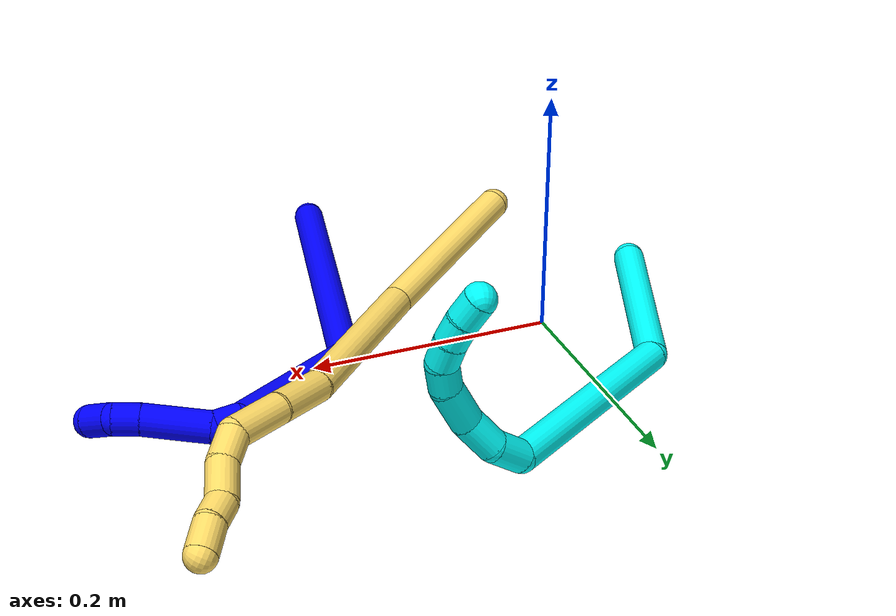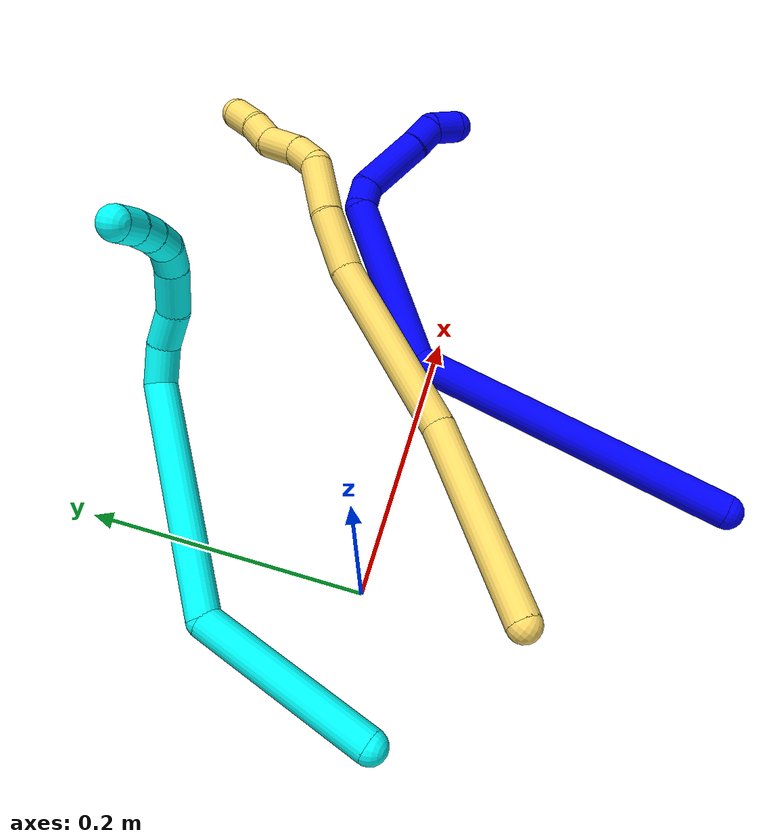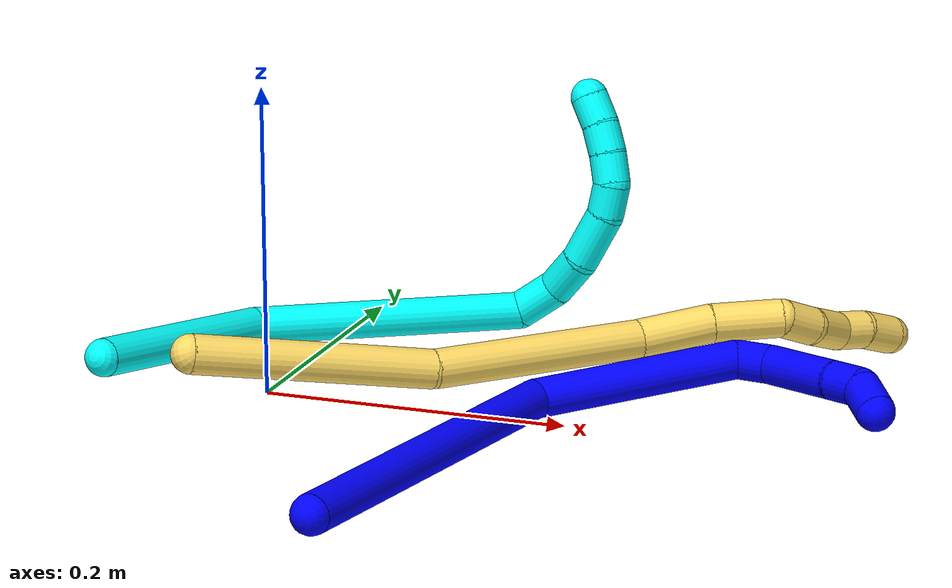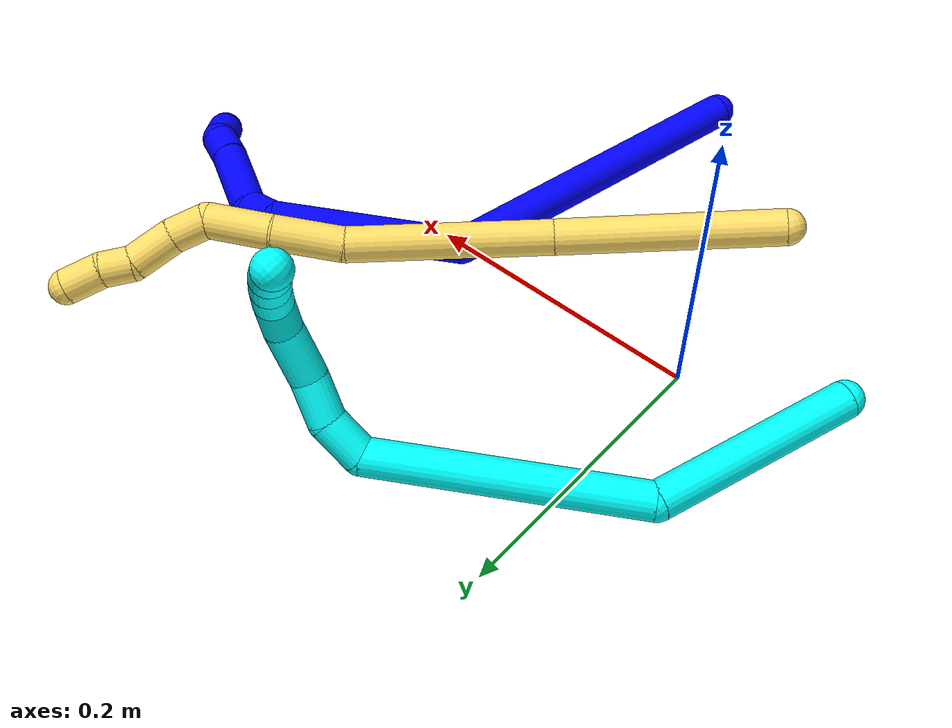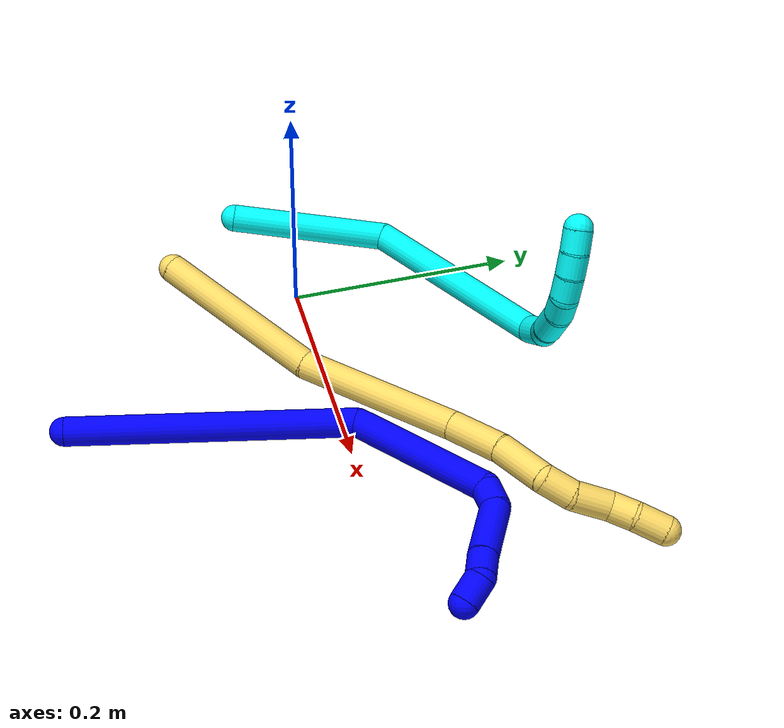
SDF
<sdf version="1.7">
 <world name="default">
  <model name="photoneo_s_sensor">
   <static>1</static>
   <pose>0 0 2 1.57079 1.57079 3.14159</pose>
   <link name="link">
    <inertial><mass>0.1</mass></inertial>
    <sensor name="sensor" type="depth">
     <update_rate>30</update_rate>
     <camera>
      <horizontal_fov>1.22</horizontal_fov>
      <image><width>1920</width><height>1200</height><format>B8G8R8</format></image>
      <clip><near>0.1</near><far>4</far></clip>
      <depth_camera><output>points</output></depth_camera>
     </camera>
     <plugin name="camera_plugin" filename="libgazebo_ros_depth_camera.so">
      <baseline>0.2</baseline>
      <alwaysOn>1</alwaysOn>
      <updateRate>0.0</updateRate>
      <cameraName>camera_ir</cameraName>
      <imageTopicName>/camera/color/image_raw</imageTopicName>
      <cameraInfoTopicName>/camera/color/camera_info</cameraInfoTopicName>
      <depthImageTopicName>/camera/depth/image_raw</depthImageTopicName>
      <depthImageCameraInfoTopicName>/camera/depth/camera_info</depthImageCameraInfoTopicName>
      <pointCloudTopicName>/camera/depth/points</pointCloudTopicName>
      <frameName>fr_optical</frameName>
      <pointCloudCutoff>0.1</pointCloudCutoff>
      <pointCloudCutoffMax>2.0</pointCloudCutoffMax>
      <distortionK1>0</distortionK1>
      <distortionK2>0</distortionK2>
      <distortionK3>0</distortionK3>
      <distortionT1>0</distortionT1>
      <distortionT2>0</distortionT2>
      <CxPrime>0</CxPrime>
      <Cx>0</Cx>
      <Cy>0</Cy>
      <focalLength>0</focalLength>
      <hackBaseline>0</hackBaseline>
     </plugin>
    </sensor>
   </link>
  </model>
  <model name="bin">
   <static>1</static>
   <link name="bottom">
    <collision name="collision-bottom">
     <pose>0 0 -0.01 0 -0 0</pose>
     <geometry><box><size>0.8 0.6 0.02</size></box></geometry>
     <surface>
      <friction><ode><mu>100</mu><mu2>100</mu2></ode></friction>
      <contact><collide_bitmask>65535</collide_bitmask></contact>
     </surface>
    </collision>
   </link>
   <link name="west_wall">
    <collision name="collision-west_wall">
     <pose>-0.41 0 0.1 0 -0 0</pose>
     <geometry><box><size>0.02 0.6 0.2</size></box></geometry>
     <surface>
      <friction><ode><mu>100</mu><mu2>100</mu2></ode></friction>
      <contact><collide_bitmask>65535</collide_bitmask></contact>
     </surface>
    </collision>
   </link>
   <link name="east_wall">
    <collision name="collision-east_wall">
     <pose>0.41 0 0.1 0 -0 0</pose>
     <geometry><box><size>0.02 0.6 0.2</size></box></geometry>
     <surface>
      <friction><ode><mu>100</mu><mu2>100</mu2></ode></friction>
      <contact><collide_bitmask>65535</collide_bitmask></contact>
     </surface>
    </collision>
   </link>
   <link name="south_wall">
    <collision name="collision-south_wall">
     <pose>0 -0.31 0.1 0 -0 0</pose>
     <geometry><box><size>0.8 0.02 0.2</size></box></geometry>
     <surface>
      <friction><ode><mu>100</mu><mu2>100</mu2></ode></friction>
      <contact><collide_bitmask>65535</collide_bitmask></contact>
     </surface>
    </collision>
   </link>
   <link name="north_wall">
    <collision name="collision-north_wall">
     <pose>0 0.31 0.1 0 -0 0</pose>
     <geometry><box><size>0.8 0.02 0.2</size></box></geometry>
     <surface>
      <friction><ode><mu>100</mu><mu2>100</mu2></ode></friction>
      <contact><collide_bitmask>65535</collide_bitmask></contact>
     </surface>
    </collision>
   </link>
  </model>
  <model name="1">
   <static>0</static>
   <link name="1">
    <collision name="collision-cylinder-e_1_1_4">
     <pose>0.000174 -0.000867 0.122832 0.007061 0.00142 5e-06</pose>
     <geometry><cylinder><radius>0.0125</radius><length>0.245671</length></cylinder></geometry>
     <surface>
      <friction><ode><mu>1.16</mu><mu2>1.16</mu2><slip1>0</slip1><slip2>0</slip2></ode></friction>
      <contact><ode><kp>1e+06</kp><kd>1</kd><max_vel>0</max_vel><min_depth>0.001</min_depth></ode></contact>
     </surface>
    </collision>
    <visual name="visual-cylinder-e_1_1_4">
     <pose>0.000174 -0.000867 0.122832 0.007061 0.00142 5e-06</pose>
     <geometry><cylinder><radius>0.0125</radius><length>0.245671</length></cylinder></geometry>
     <material><ambient>0 0 1 1</ambient></material>
    </visual>
    <collision name="collision-cylinder-e_2_4_5">
     <pose>0.040699 0.018698 0.295064 -0.392188 0.646567 -0.132912</pose>
     <geometry><cylinder><radius>0.0125</radius><length>0.133954</length></cylinder></geometry>
     <surface>
      <friction><ode><mu>1.16</mu><mu2>1.16</mu2><slip1>0</slip1><slip2>0</slip2></ode></friction>
      <contact><ode><kp>1e+06</kp><kd>1</kd><max_vel>0</max_vel><min_depth>0.001</min_depth></ode></contact>
     </surface>
    </collision>
    <visual name="visual-cylinder-e_2_4_5">
     <pose>0.040699 0.018698 0.295064 -0.392188 0.646567 -0.132912</pose>
     <geometry><cylinder><radius>0.0125</radius><length>0.133954</length></cylinder></geometry>
     <material><ambient>0 0 1 1</ambient></material>
    </visual>
    <collision name="collision-cylinder-e_3_5_6">
     <pose>0.08894 0.04587 0.347533 -1.14339 0.817058 -0.543235</pose>
     <geometry><cylinder><radius>0.0125</radius><length>0.021644</length></cylinder></geometry>
     <surface>
      <friction><ode><mu>1.16</mu><mu2>1.16</mu2><slip1>0</slip1><slip2>0</slip2></ode></friction>
      <contact><ode><kp>1e+06</kp><kd>1</kd><max_vel>0</max_vel><min_depth>0.001</min_depth></ode></contact>
     </surface>
    </collision>
    <visual name="visual-cylinder-e_3_5_6">
     <pose>0.08894 0.04587 0.347533 -1.14339 0.817058 -0.543235</pose>
     <geometry><cylinder><radius>0.0125</radius><length>0.021644</length></cylinder></geometry>
     <material><ambient>0 0 1 1</ambient></material>
    </visual>
    <collision name="collision-cylinder-e_4_6_7">
     <pose>0.118277 0.066897 0.343125 -2.05298 0.926063 -1.37932</pose>
     <geometry><cylinder><radius>0.0125</radius><length>0.053665</length></cylinder></geometry>
     <surface>
      <friction><ode><mu>1.16</mu><mu2>1.16</mu2><slip1>0</slip1><slip2>0</slip2></ode></friction>
      <contact><ode><kp>1e+06</kp><kd>1</kd><max_vel>0</max_vel><min_depth>0.001</min_depth></ode></contact>
     </surface>
    </collision>
    <visual name="visual-cylinder-e_4_6_7">
     <pose>0.118277 0.066897 0.343125 -2.05298 0.926063 -1.37932</pose>
     <geometry><cylinder><radius>0.0125</radius><length>0.053665</length></cylinder></geometry>
     <material><ambient>0 0 1 1</ambient></material>
    </visual>
    <collision name="collision-cylinder-e_5_7_8">
     <pose>0.14824 0.087439 0.333705 -1.87197 0.915268 -1.17883</pose>
     <geometry><cylinder><radius>0.0125</radius><length>0.021488</length></cylinder></geometry>
     <surface>
      <friction><ode><mu>1.16</mu><mu2>1.16</mu2><slip1>0</slip1><slip2>0</slip2></ode></friction>
      <contact><ode><kp>1e+06</kp><kd>1</kd><max_vel>0</max_vel><min_depth>0.001</min_depth></ode></contact>
     </surface>
    </collision>
    <visual name="visual-cylinder-e_5_7_8">
     <pose>0.14824 0.087439 0.333705 -1.87197 0.915268 -1.17883</pose>
     <geometry><cylinder><radius>0.0125</radius><length>0.021488</length></cylinder></geometry>
     <material><ambient>0 0 1 1</ambient></material>
    </visual>
    <collision name="collision-cylinder-e_6_8_2">
     <pose>0.160942 0.102368 0.324964 -2.2355 0.362919 -0.72086</pose>
     <geometry><cylinder><radius>0.0125</radius><length>0.023579</length></cylinder></geometry>
     <surface>
      <friction><ode><mu>1.16</mu><mu2>1.16</mu2><slip1>0</slip1><slip2>0</slip2></ode></friction>
      <contact><ode><kp>1e+06</kp><kd>1</kd><max_vel>0</max_vel><min_depth>0.001</min_depth></ode></contact>
     </surface>
    </collision>
    <visual name="visual-cylinder-e_6_8_2">
     <pose>0.160942 0.102368 0.324964 -2.2355 0.362919 -0.72086</pose>
     <geometry><cylinder><radius>0.0125</radius><length>0.023579</length></cylinder></geometry>
     <material><ambient>0 0 1 1</ambient></material>
    </visual>
    <collision name="collision-sphere-2">
     <pose>0.165127 0.111043 0.318165 0 -0 0</pose>
     <geometry><sphere><radius>0.0125</radius></sphere></geometry>
     <surface>
      <friction><ode><mu>1.16</mu><mu2>1.16</mu2><slip1>0</slip1><slip2>0</slip2></ode></friction>
      <contact><ode><kp>1e+06</kp><kd>1</kd><max_vel>0</max_vel><min_depth>0.001</min_depth></ode></contact>
     </surface>
    </collision>
    <visual name="visual-sphere-2">
     <pose>0.165127 0.111043 0.318165 0 -0 0</pose>
     <geometry><sphere><radius>0.0125</radius></sphere></geometry>
     <material><ambient>0 0 1 1</ambient></material>
    </visual>
    <collision name="collision-sphere-4">
     <pose>0.000349 -0.001735 0.245665 0 -0 0</pose>
     <geometry><sphere><radius>0.0125</radius></sphere></geometry>
     <surface>
      <friction><ode><mu>1.16</mu><mu2>1.16</mu2><slip1>0</slip1><slip2>0</slip2></ode></friction>
      <contact><ode><kp>1e+06</kp><kd>1</kd><max_vel>0</max_vel><min_depth>0.001</min_depth></ode></contact>
     </surface>
    </collision>
    <visual name="visual-sphere-4">
     <pose>0.000349 -0.001735 0.245665 0 -0 0</pose>
     <geometry><sphere><radius>0.0125</radius></sphere></geometry>
     <material><ambient>0 0 1 1</ambient></material>
    </visual>
    <collision name="collision-sphere-1">
     <geometry><sphere><radius>0.0125</radius></sphere></geometry>
     <surface>
      <friction><ode><mu>1.16</mu><mu2>1.16</mu2><slip1>0</slip1><slip2>0</slip2></ode></friction>
      <contact><ode><kp>1e+06</kp><kd>1</kd><max_vel>0</max_vel><min_depth>0.001</min_depth></ode></contact>
     </surface>
    </collision>
    <visual name="visual-sphere-1">
     <geometry><sphere><radius>0.0125</radius></sphere></geometry>
     <material><ambient>0 0 1 1</ambient></material>
    </visual>
    <collision name="collision-sphere-8">
     <pose>0.156757 0.093693 0.331762 0 -0 0</pose>
     <geometry><sphere><radius>0.0125</radius></sphere></geometry>
     <surface>
      <friction><ode><mu>1.16</mu><mu2>1.16</mu2><slip1>0</slip1><slip2>0</slip2></ode></friction>
      <contact><ode><kp>1e+06</kp><kd>1</kd><max_vel>0</max_vel><min_depth>0.001</min_depth></ode></contact>
     </surface>
    </collision>
    <visual name="visual-sphere-8">
     <pose>0.156757 0.093693 0.331762 0 -0 0</pose>
     <geometry><sphere><radius>0.0125</radius></sphere></geometry>
     <material><ambient>0 0 1 1</ambient></material>
    </visual>
    <collision name="collision-sphere-5">
     <pose>0.08105 0.03913 0.344463 0 -0 0</pose>
     <geometry><sphere><radius>0.0125</radius></sphere></geometry>
     <surface>
      <friction><ode><mu>1.16</mu><mu2>1.16</mu2><slip1>0</slip1><slip2>0</slip2></ode></friction>
      <contact><ode><kp>1e+06</kp><kd>1</kd><max_vel>0</max_vel><min_depth>0.001</min_depth></ode></contact>
     </surface>
    </collision>
    <visual name="visual-sphere-5">
     <pose>0.08105 0.03913 0.344463 0 -0 0</pose>
     <geometry><sphere><radius>0.0125</radius></sphere></geometry>
     <material><ambient>0 0 1 1</ambient></material>
    </visual>
    <collision name="collision-sphere-6">
     <pose>0.096831 0.05261 0.350603 0 -0 0</pose>
     <geometry><sphere><radius>0.0125</radius></sphere></geometry>
     <surface>
      <friction><ode><mu>1.16</mu><mu2>1.16</mu2><slip1>0</slip1><slip2>0</slip2></ode></friction>
      <contact><ode><kp>1e+06</kp><kd>1</kd><max_vel>0</max_vel><min_depth>0.001</min_depth></ode></contact>
     </surface>
    </collision>
    <visual name="visual-sphere-6">
     <pose>0.096831 0.05261 0.350603 0 -0 0</pose>
     <geometry><sphere><radius>0.0125</radius></sphere></geometry>
     <material><ambient>0 0 1 1</ambient></material>
    </visual>
    <collision name="collision-sphere-7">
     <pose>0.139723 0.081184 0.335648 0 -0 0</pose>
     <geometry><sphere><radius>0.0125</radius></sphere></geometry>
     <surface>
      <friction><ode><mu>1.16</mu><mu2>1.16</mu2><slip1>0</slip1><slip2>0</slip2></ode></friction>
      <contact><ode><kp>1e+06</kp><kd>1</kd><max_vel>0</max_vel><min_depth>0.001</min_depth></ode></contact>
     </surface>
    </collision>
    <visual name="visual-sphere-7">
     <pose>0.139723 0.081184 0.335648 0 -0 0</pose>
     <geometry><sphere><radius>0.0125</radius></sphere></geometry>
     <material><ambient>0 0 1 1</ambient></material>
    </visual>
    <inertial>
     <pose>0.041494 0.022334 0.22094 0 -0 0</pose>
     <mass>0.5</mass>
     <inertia>
      <ixx>0.001392</ixx>
      <ixy>0</ixy>
      <ixz>0</ixz>
      <iyy>0.001426</iyy>
      <iyz>0</iyz>
      <izz>-0.000181</izz>
     </inertia>
    </inertial>
   </link>
   <pose>0.125865 -0.229418 0.013203 -1.58327 -0.634676 -0.20636</pose>
  </model>
  <model name="3">
   <static>0</static>
   <link name="3">
    <collision name="collision-cylinder-e_1_1_4">
     <pose>0.017217 0.015196 0.066471 -0.224749 0.24733 -0.028053</pose>
     <geometry><cylinder><radius>0.0125</radius><length>0.140652</length></cylinder></geometry>
     <surface>
      <friction><ode><mu>1.16</mu><mu2>1.16</mu2><slip1>0</slip1><slip2>0</slip2></ode></friction>
      <contact><ode><kp>1e+06</kp><kd>1</kd><max_vel>0</max_vel><min_depth>0.001</min_depth></ode></contact>
     </surface>
    </collision>
    <visual name="visual-cylinder-e_1_1_4">
     <pose>0.017217 0.015196 0.066471 -0.224749 0.24733 -0.028053</pose>
     <geometry><cylinder><radius>0.0125</radius><length>0.140652</length></cylinder></geometry>
     <material><ambient>0.003922 1 0.996078 1</ambient></material>
    </visual>
    <collision name="collision-cylinder-e_2_4_5">
     <pose>0.051791 0.10181 0.185427 -0.937025 0.193386 -0.098099</pose>
     <geometry><cylinder><radius>0.0125</radius><length>0.180627</length></cylinder></geometry>
     <surface>
      <friction><ode><mu>1.16</mu><mu2>1.16</mu2><slip1>0</slip1><slip2>0</slip2></ode></friction>
      <contact><ode><kp>1e+06</kp><kd>1</kd><max_vel>0</max_vel><min_depth>0.001</min_depth></ode></contact>
     </surface>
    </collision>
    <visual name="visual-cylinder-e_2_4_5">
     <pose>0.051791 0.10181 0.185427 -0.937025 0.193386 -0.098099</pose>
     <geometry><cylinder><radius>0.0125</radius><length>0.180627</length></cylinder></geometry>
     <material><ambient>0.003922 1 0.996078 1</ambient></material>
    </visual>
    <collision name="collision-cylinder-e_3_5_6">
     <pose>0.078241 0.185307 0.238109 -1.55457 0.645284 -0.635588</pose>
     <geometry><cylinder><radius>0.0125</radius><length>0.030241</length></cylinder></geometry>
     <surface>
      <friction><ode><mu>1.16</mu><mu2>1.16</mu2><slip1>0</slip1><slip2>0</slip2></ode></friction>
      <contact><ode><kp>1e+06</kp><kd>1</kd><max_vel>0</max_vel><min_depth>0.001</min_depth></ode></contact>
     </surface>
    </collision>
    <visual name="visual-cylinder-e_3_5_6">
     <pose>0.078241 0.185307 0.238109 -1.55457 0.645284 -0.635588</pose>
     <geometry><cylinder><radius>0.0125</radius><length>0.030241</length></cylinder></geometry>
     <material><ambient>0.003922 1 0.996078 1</ambient></material>
    </visual>
    <collision name="collision-cylinder-e_4_6_7">
     <pose>0.097221 0.207239 0.233168 -2.05133 0.727054 -1.12055</pose>
     <geometry><cylinder><radius>0.0125</radius><length>0.029746</length></cylinder></geometry>
     <surface>
      <friction><ode><mu>1.16</mu><mu2>1.16</mu2><slip1>0</slip1><slip2>0</slip2></ode></friction>
      <contact><ode><kp>1e+06</kp><kd>1</kd><max_vel>0</max_vel><min_depth>0.001</min_depth></ode></contact>
     </surface>
    </collision>
    <visual name="visual-cylinder-e_4_6_7">
     <pose>0.097221 0.207239 0.233168 -2.05133 0.727054 -1.12055</pose>
     <geometry><cylinder><radius>0.0125</radius><length>0.029746</length></cylinder></geometry>
     <material><ambient>0.003922 1 0.996078 1</ambient></material>
    </visual>
    <collision name="collision-cylinder-e_5_7_8">
     <pose>0.122799 0.225855 0.224169 -1.98602 1.02289 -1.42148</pose>
     <geometry><cylinder><radius>0.0125</radius><length>0.036767</length></cylinder></geometry>
     <surface>
      <friction><ode><mu>1.16</mu><mu2>1.16</mu2><slip1>0</slip1><slip2>0</slip2></ode></friction>
      <contact><ode><kp>1e+06</kp><kd>1</kd><max_vel>0</max_vel><min_depth>0.001</min_depth></ode></contact>
     </surface>
    </collision>
    <visual name="visual-cylinder-e_5_7_8">
     <pose>0.122799 0.225855 0.224169 -1.98602 1.02289 -1.42148</pose>
     <geometry><cylinder><radius>0.0125</radius><length>0.036767</length></cylinder></geometry>
     <material><ambient>0.003922 1 0.996078 1</ambient></material>
    </visual>
    <collision name="collision-cylinder-e_6_8_9">
     <pose>0.148856 0.236702 0.217647 -2.47685 1.25569 -2.25377</pose>
     <geometry><cylinder><radius>0.0125</radius><length>0.021803</length></cylinder></geometry>
     <surface>
      <friction><ode><mu>1.16</mu><mu2>1.16</mu2><slip1>0</slip1><slip2>0</slip2></ode></friction>
      <contact><ode><kp>1e+06</kp><kd>1</kd><max_vel>0</max_vel><min_depth>0.001</min_depth></ode></contact>
     </surface>
    </collision>
    <visual name="visual-cylinder-e_6_8_9">
     <pose>0.148856 0.236702 0.217647 -2.47685 1.25569 -2.25377</pose>
     <geometry><cylinder><radius>0.0125</radius><length>0.021803</length></cylinder></geometry>
     <material><ambient>0.003922 1 0.996078 1</ambient></material>
    </visual>
    <collision name="collision-cylinder-e_7_9_10">
     <pose>0.168923 0.236466 0.213656 2.09194 1.3018 1.8416</pose>
     <geometry><cylinder><radius>0.0125</radius><length>0.020127</length></cylinder></geometry>
     <surface>
      <friction><ode><mu>1.16</mu><mu2>1.16</mu2><slip1>0</slip1><slip2>0</slip2></ode></friction>
      <contact><ode><kp>1e+06</kp><kd>1</kd><max_vel>0</max_vel><min_depth>0.001</min_depth></ode></contact>
     </surface>
    </collision>
    <visual name="visual-cylinder-e_7_9_10">
     <pose>0.168923 0.236466 0.213656 2.09194 1.3018 1.8416</pose>
     <geometry><cylinder><radius>0.0125</radius><length>0.020127</length></cylinder></geometry>
     <material><ambient>0.003922 1 0.996078 1</ambient></material>
    </visual>
    <collision name="collision-cylinder-e_8_10_11">
     <pose>0.187922 0.230631 0.211126 1.89951 1.19074 1.51607</pose>
     <geometry><cylinder><radius>0.0125</radius><length>0.020024</length></cylinder></geometry>
     <surface>
      <friction><ode><mu>1.16</mu><mu2>1.16</mu2><slip1>0</slip1><slip2>0</slip2></ode></friction>
      <contact><ode><kp>1e+06</kp><kd>1</kd><max_vel>0</max_vel><min_depth>0.001</min_depth></ode></contact>
     </surface>
    </collision>
    <visual name="visual-cylinder-e_8_10_11">
     <pose>0.187922 0.230631 0.211126 1.89951 1.19074 1.51607</pose>
     <geometry><cylinder><radius>0.0125</radius><length>0.020024</length></cylinder></geometry>
     <material><ambient>0.003922 1 0.996078 1</ambient></material>
    </visual>
    <collision name="collision-cylinder-e_9_11_2">
     <pose>0.205915 0.222276 0.208886 1.78254 1.05319 1.24752</pose>
     <geometry><cylinder><radius>0.0125</radius><length>0.020012</length></cylinder></geometry>
     <surface>
      <friction><ode><mu>1.16</mu><mu2>1.16</mu2><slip1>0</slip1><slip2>0</slip2></ode></friction>
      <contact><ode><kp>1e+06</kp><kd>1</kd><max_vel>0</max_vel><min_depth>0.001</min_depth></ode></contact>
     </surface>
    </collision>
    <visual name="visual-cylinder-e_9_11_2">
     <pose>0.205915 0.222276 0.208886 1.78254 1.05319 1.24752</pose>
     <geometry><cylinder><radius>0.0125</radius><length>0.020012</length></cylinder></geometry>
     <material><ambient>0.003922 1 0.996078 1</ambient></material>
    </visual>
    <collision name="collision-sphere-2">
     <pose>0.214611 0.217435 0.207845 0 -0 0</pose>
     <geometry><sphere><radius>0.0125</radius></sphere></geometry>
     <surface>
      <friction><ode><mu>1.16</mu><mu2>1.16</mu2><slip1>0</slip1><slip2>0</slip2></ode></friction>
      <contact><ode><kp>1e+06</kp><kd>1</kd><max_vel>0</max_vel><min_depth>0.001</min_depth></ode></contact>
     </surface>
    </collision>
    <visual name="visual-sphere-2">
     <pose>0.214611 0.217435 0.207845 0 -0 0</pose>
     <geometry><sphere><radius>0.0125</radius></sphere></geometry>
     <material><ambient>0.003922 1 0.996078 1</ambient></material>
    </visual>
    <collision name="collision-sphere-11">
     <pose>0.19722 0.227116 0.209926 0 -0 0</pose>
     <geometry><sphere><radius>0.0125</radius></sphere></geometry>
     <surface>
      <friction><ode><mu>1.16</mu><mu2>1.16</mu2><slip1>0</slip1><slip2>0</slip2></ode></friction>
      <contact><ode><kp>1e+06</kp><kd>1</kd><max_vel>0</max_vel><min_depth>0.001</min_depth></ode></contact>
     </surface>
    </collision>
    <visual name="visual-sphere-11">
     <pose>0.19722 0.227116 0.209926 0 -0 0</pose>
     <geometry><sphere><radius>0.0125</radius></sphere></geometry>
     <material><ambient>0.003922 1 0.996078 1</ambient></material>
    </visual>
    <collision name="collision-sphere-10">
     <pose>0.178625 0.234147 0.212325 0 -0 0</pose>
     <geometry><sphere><radius>0.0125</radius></sphere></geometry>
     <surface>
      <friction><ode><mu>1.16</mu><mu2>1.16</mu2><slip1>0</slip1><slip2>0</slip2></ode></friction>
      <contact><ode><kp>1e+06</kp><kd>1</kd><max_vel>0</max_vel><min_depth>0.001</min_depth></ode></contact>
     </surface>
    </collision>
    <visual name="visual-sphere-10">
     <pose>0.178625 0.234147 0.212325 0 -0 0</pose>
     <geometry><sphere><radius>0.0125</radius></sphere></geometry>
     <material><ambient>0.003922 1 0.996078 1</ambient></material>
    </visual>
    <collision name="collision-sphere-9">
     <pose>0.159221 0.238786 0.214988 0 -0 0</pose>
     <geometry><sphere><radius>0.0125</radius></sphere></geometry>
     <surface>
      <friction><ode><mu>1.16</mu><mu2>1.16</mu2><slip1>0</slip1><slip2>0</slip2></ode></friction>
      <contact><ode><kp>1e+06</kp><kd>1</kd><max_vel>0</max_vel><min_depth>0.001</min_depth></ode></contact>
     </surface>
    </collision>
    <visual name="visual-sphere-9">
     <pose>0.159221 0.238786 0.214988 0 -0 0</pose>
     <geometry><sphere><radius>0.0125</radius></sphere></geometry>
     <material><ambient>0.003922 1 0.996078 1</ambient></material>
    </visual>
    <collision name="collision-sphere-4">
     <pose>0.034434 0.030392 0.132942 0 -0 0</pose>
     <geometry><sphere><radius>0.0125</radius></sphere></geometry>
     <surface>
      <friction><ode><mu>1.16</mu><mu2>1.16</mu2><slip1>0</slip1><slip2>0</slip2></ode></friction>
      <contact><ode><kp>1e+06</kp><kd>1</kd><max_vel>0</max_vel><min_depth>0.001</min_depth></ode></contact>
     </surface>
    </collision>
    <visual name="visual-sphere-4">
     <pose>0.034434 0.030392 0.132942 0 -0 0</pose>
     <geometry><sphere><radius>0.0125</radius></sphere></geometry>
     <material><ambient>0.003922 1 0.996078 1</ambient></material>
    </visual>
    <collision name="collision-sphere-1">
     <geometry><sphere><radius>0.0125</radius></sphere></geometry>
     <surface>
      <friction><ode><mu>1.16</mu><mu2>1.16</mu2><slip1>0</slip1><slip2>0</slip2></ode></friction>
      <contact><ode><kp>1e+06</kp><kd>1</kd><max_vel>0</max_vel><min_depth>0.001</min_depth></ode></contact>
     </surface>
    </collision>
    <visual name="visual-sphere-1">
     <geometry><sphere><radius>0.0125</radius></sphere></geometry>
     <material><ambient>0.003922 1 0.996078 1</ambient></material>
    </visual>
    <collision name="collision-sphere-8">
     <pose>0.138492 0.234618 0.220306 0 -0 0</pose>
     <geometry><sphere><radius>0.0125</radius></sphere></geometry>
     <surface>
      <friction><ode><mu>1.16</mu><mu2>1.16</mu2><slip1>0</slip1><slip2>0</slip2></ode></friction>
      <contact><ode><kp>1e+06</kp><kd>1</kd><max_vel>0</max_vel><min_depth>0.001</min_depth></ode></contact>
     </surface>
    </collision>
    <visual name="visual-sphere-8">
     <pose>0.138492 0.234618 0.220306 0 -0 0</pose>
     <geometry><sphere><radius>0.0125</radius></sphere></geometry>
     <material><ambient>0.003922 1 0.996078 1</ambient></material>
    </visual>
    <collision name="collision-sphere-5">
     <pose>0.069147 0.173228 0.237913 0 -0 0</pose>
     <geometry><sphere><radius>0.0125</radius></sphere></geometry>
     <surface>
      <friction><ode><mu>1.16</mu><mu2>1.16</mu2><slip1>0</slip1><slip2>0</slip2></ode></friction>
      <contact><ode><kp>1e+06</kp><kd>1</kd><max_vel>0</max_vel><min_depth>0.001</min_depth></ode></contact>
     </surface>
    </collision>
    <visual name="visual-sphere-5">
     <pose>0.069147 0.173228 0.237913 0 -0 0</pose>
     <geometry><sphere><radius>0.0125</radius></sphere></geometry>
     <material><ambient>0.003922 1 0.996078 1</ambient></material>
    </visual>
    <collision name="collision-sphere-6">
     <pose>0.087335 0.197386 0.238305 0 -0 0</pose>
     <geometry><sphere><radius>0.0125</radius></sphere></geometry>
     <surface>
      <friction><ode><mu>1.16</mu><mu2>1.16</mu2><slip1>0</slip1><slip2>0</slip2></ode></friction>
      <contact><ode><kp>1e+06</kp><kd>1</kd><max_vel>0</max_vel><min_depth>0.001</min_depth></ode></contact>
     </surface>
    </collision>
    <visual name="visual-sphere-6">
     <pose>0.087335 0.197386 0.238305 0 -0 0</pose>
     <geometry><sphere><radius>0.0125</radius></sphere></geometry>
     <material><ambient>0.003922 1 0.996078 1</ambient></material>
    </visual>
    <collision name="collision-sphere-7">
     <pose>0.107107 0.217093 0.228032 0 -0 0</pose>
     <geometry><sphere><radius>0.0125</radius></sphere></geometry>
     <surface>
      <friction><ode><mu>1.16</mu><mu2>1.16</mu2><slip1>0</slip1><slip2>0</slip2></ode></friction>
      <contact><ode><kp>1e+06</kp><kd>1</kd><max_vel>0</max_vel><min_depth>0.001</min_depth></ode></contact>
     </surface>
    </collision>
    <visual name="visual-sphere-7">
     <pose>0.107107 0.217093 0.228032 0 -0 0</pose>
     <geometry><sphere><radius>0.0125</radius></sphere></geometry>
     <material><ambient>0.003922 1 0.996078 1</ambient></material>
    </visual>
    <inertial>
     <pose>0.072157 0.119172 0.165349 0 -0 0</pose>
     <mass>0.5</mass>
     <inertia>
      <ixx>0.000677</ixx>
      <ixy>0</ixy>
      <ixz>0</ixz>
      <iyy>0.000502</iyy>
      <iyz>0</iyz>
      <izz>-0.000604</izz>
     </inertia>
    </inertial>
   </link>
   <pose>-0.097089 -0.036046 0.024113 3.07059 -1.21906 1.51653</pose>
  </model>
  <model name="5">
   <static>0</static>
   <link name="5">
    <collision name="collision-cylinder-e_1_1_4">
     <pose>0.02283 0.068344 -0.027733 -1.95628 0.300179 -0.44181</pose>
     <geometry><cylinder><radius>0.0125</radius><length>0.154419</length></cylinder></geometry>
     <surface>
      <friction><ode><mu>1.16</mu><mu2>1.16</mu2><slip1>0</slip1><slip2>0</slip2></ode></friction>
      <contact><ode><kp>1e+06</kp><kd>1</kd><max_vel>0</max_vel><min_depth>0.001</min_depth></ode></contact>
     </surface>
    </collision>
    <visual name="visual-cylinder-e_1_1_4">
     <pose>0.02283 0.068344 -0.027733 -1.95628 0.300179 -0.44181</pose>
     <geometry><cylinder><radius>0.0125</radius><length>0.154419</length></cylinder></geometry>
     <material><ambient>1 0.858824 0.4 1</ambient></material>
    </visual>
    <collision name="collision-cylinder-e_2_4_5">
     <pose>0.080934 0.194561 -0.077452 -1.93384 0.517907 -0.733281</pose>
     <geometry><cylinder><radius>0.0125</radius><length>0.142503</length></cylinder></geometry>
     <surface>
      <friction><ode><mu>1.16</mu><mu2>1.16</mu2><slip1>0</slip1><slip2>0</slip2></ode></friction>
      <contact><ode><kp>1e+06</kp><kd>1</kd><max_vel>0</max_vel><min_depth>0.001</min_depth></ode></contact>
     </surface>
    </collision>
    <visual name="visual-cylinder-e_2_4_5">
     <pose>0.080934 0.194561 -0.077452 -1.93384 0.517907 -0.733281</pose>
     <geometry><cylinder><radius>0.0125</radius><length>0.142503</length></cylinder></geometry>
     <material><ambient>1 0.858824 0.4 1</ambient></material>
    </visual>
    <collision name="collision-cylinder-e_3_5_6">
     <pose>0.128186 0.270274 -0.111648 -2.17104 0.505928 -0.911555</pose>
     <geometry><cylinder><radius>0.0125</radius><length>0.049431</length></cylinder></geometry>
     <surface>
      <friction><ode><mu>1.16</mu><mu2>1.16</mu2><slip1>0</slip1><slip2>0</slip2></ode></friction>
      <contact><ode><kp>1e+06</kp><kd>1</kd><max_vel>0</max_vel><min_depth>0.001</min_depth></ode></contact>
     </surface>
    </collision>
    <visual name="visual-cylinder-e_3_5_6">
     <pose>0.128186 0.270274 -0.111648 -2.17104 0.505928 -0.911555</pose>
     <geometry><cylinder><radius>0.0125</radius><length>0.049431</length></cylinder></geometry>
     <material><ambient>1 0.858824 0.4 1</ambient></material>
    </visual>
    <collision name="collision-cylinder-e_4_6_7">
     <pose>0.147989 0.305659 -0.136286 -2.18704 0.349064 -0.657189</pose>
     <geometry><cylinder><radius>0.0125</radius><length>0.045759</length></cylinder></geometry>
     <surface>
      <friction><ode><mu>1.16</mu><mu2>1.16</mu2><slip1>0</slip1><slip2>0</slip2></ode></friction>
      <contact><ode><kp>1e+06</kp><kd>1</kd><max_vel>0</max_vel><min_depth>0.001</min_depth></ode></contact>
     </surface>
    </collision>
    <visual name="visual-cylinder-e_4_6_7">
     <pose>0.147989 0.305659 -0.136286 -2.18704 0.349064 -0.657189</pose>
     <geometry><cylinder><radius>0.0125</radius><length>0.045759</length></cylinder></geometry>
     <material><ambient>1 0.858824 0.4 1</ambient></material>
    </visual>
    <collision name="collision-cylinder-e_5_7_8">
     <pose>0.159503 0.336001 -0.148749 -1.57368 0.280684 -0.281483</pose>
     <geometry><cylinder><radius>0.0125</radius><length>0.026636</length></cylinder></geometry>
     <surface>
      <friction><ode><mu>1.16</mu><mu2>1.16</mu2><slip1>0</slip1><slip2>0</slip2></ode></friction>
      <contact><ode><kp>1e+06</kp><kd>1</kd><max_vel>0</max_vel><min_depth>0.001</min_depth></ode></contact>
     </surface>
    </collision>
    <visual name="visual-cylinder-e_5_7_8">
     <pose>0.159503 0.336001 -0.148749 -1.57368 0.280684 -0.281483</pose>
     <geometry><cylinder><radius>0.0125</radius><length>0.026636</length></cylinder></geometry>
     <material><ambient>1 0.858824 0.4 1</ambient></material>
    </visual>
    <collision name="collision-cylinder-e_6_8_9">
     <pose>0.169877 0.363074 -0.144638 -1.28808 0.422556 -0.319336</pose>
     <geometry><cylinder><radius>0.0125</radius><length>0.0326</length></cylinder></geometry>
     <surface>
      <friction><ode><mu>1.16</mu><mu2>1.16</mu2><slip1>0</slip1><slip2>0</slip2></ode></friction>
      <contact><ode><kp>1e+06</kp><kd>1</kd><max_vel>0</max_vel><min_depth>0.001</min_depth></ode></contact>
     </surface>
    </collision>
    <visual name="visual-cylinder-e_6_8_9">
     <pose>0.169877 0.363074 -0.144638 -1.28808 0.422556 -0.319336</pose>
     <geometry><cylinder><radius>0.0125</radius><length>0.0326</length></cylinder></geometry>
     <material><ambient>1 0.858824 0.4 1</ambient></material>
    </visual>
    <collision name="collision-cylinder-e_7_9_10">
     <pose>0.181678 0.386831 -0.142118 -1.74069 0.488818 -0.575239</pose>
     <geometry><cylinder><radius>0.0125</radius><length>0.021791</length></cylinder></geometry>
     <surface>
      <friction><ode><mu>1.16</mu><mu2>1.16</mu2><slip1>0</slip1><slip2>0</slip2></ode></friction>
      <contact><ode><kp>1e+06</kp><kd>1</kd><max_vel>0</max_vel><min_depth>0.001</min_depth></ode></contact>
     </surface>
    </collision>
    <visual name="visual-cylinder-e_7_9_10">
     <pose>0.181678 0.386831 -0.142118 -1.74069 0.488818 -0.575239</pose>
     <geometry><cylinder><radius>0.0125</radius><length>0.021791</length></cylinder></geometry>
     <material><ambient>1 0.858824 0.4 1</ambient></material>
    </visual>
    <collision name="collision-cylinder-e_8_10_2">
     <pose>0.191487 0.408879 -0.143112 -1.52057 0.356962 -0.339812</pose>
     <geometry><cylinder><radius>0.0125</radius><length>0.02686</length></cylinder></geometry>
     <surface>
      <friction><ode><mu>1.16</mu><mu2>1.16</mu2><slip1>0</slip1><slip2>0</slip2></ode></friction>
      <contact><ode><kp>1e+06</kp><kd>1</kd><max_vel>0</max_vel><min_depth>0.001</min_depth></ode></contact>
     </surface>
    </collision>
    <visual name="visual-cylinder-e_8_10_2">
     <pose>0.191487 0.408879 -0.143112 -1.52057 0.356962 -0.339812</pose>
     <geometry><cylinder><radius>0.0125</radius><length>0.02686</length></cylinder></geometry>
     <material><ambient>1 0.858824 0.4 1</ambient></material>
    </visual>
    <collision name="collision-sphere-2">
     <pose>0.19618 0.421447 -0.142481 0 -0 0</pose>
     <geometry><sphere><radius>0.0125</radius></sphere></geometry>
     <surface>
      <friction><ode><mu>1.16</mu><mu2>1.16</mu2><slip1>0</slip1><slip2>0</slip2></ode></friction>
      <contact><ode><kp>1e+06</kp><kd>1</kd><max_vel>0</max_vel><min_depth>0.001</min_depth></ode></contact>
     </surface>
    </collision>
    <visual name="visual-sphere-2">
     <pose>0.19618 0.421447 -0.142481 0 -0 0</pose>
     <geometry><sphere><radius>0.0125</radius></sphere></geometry>
     <material><ambient>1 0.858824 0.4 1</ambient></material>
    </visual>
    <collision name="collision-sphere-10">
     <pose>0.186794 0.396312 -0.143744 0 -0 0</pose>
     <geometry><sphere><radius>0.0125</radius></sphere></geometry>
     <surface>
      <friction><ode><mu>1.16</mu><mu2>1.16</mu2><slip1>0</slip1><slip2>0</slip2></ode></friction>
      <contact><ode><kp>1e+06</kp><kd>1</kd><max_vel>0</max_vel><min_depth>0.001</min_depth></ode></contact>
     </surface>
    </collision>
    <visual name="visual-sphere-10">
     <pose>0.186794 0.396312 -0.143744 0 -0 0</pose>
     <geometry><sphere><radius>0.0125</radius></sphere></geometry>
     <material><ambient>1 0.858824 0.4 1</ambient></material>
    </visual>
    <collision name="collision-sphere-9">
     <pose>0.176562 0.37735 -0.140491 0 -0 0</pose>
     <geometry><sphere><radius>0.0125</radius></sphere></geometry>
     <surface>
      <friction><ode><mu>1.16</mu><mu2>1.16</mu2><slip1>0</slip1><slip2>0</slip2></ode></friction>
      <contact><ode><kp>1e+06</kp><kd>1</kd><max_vel>0</max_vel><min_depth>0.001</min_depth></ode></contact>
     </surface>
    </collision>
    <visual name="visual-sphere-9">
     <pose>0.176562 0.37735 -0.140491 0 -0 0</pose>
     <geometry><sphere><radius>0.0125</radius></sphere></geometry>
     <material><ambient>1 0.858824 0.4 1</ambient></material>
    </visual>
    <collision name="collision-sphere-4">
     <pose>0.04566 0.136689 -0.055467 0 -0 0</pose>
     <geometry><sphere><radius>0.0125</radius></sphere></geometry>
     <surface>
      <friction><ode><mu>1.16</mu><mu2>1.16</mu2><slip1>0</slip1><slip2>0</slip2></ode></friction>
      <contact><ode><kp>1e+06</kp><kd>1</kd><max_vel>0</max_vel><min_depth>0.001</min_depth></ode></contact>
     </surface>
    </collision>
    <visual name="visual-sphere-4">
     <pose>0.04566 0.136689 -0.055467 0 -0 0</pose>
     <geometry><sphere><radius>0.0125</radius></sphere></geometry>
     <material><ambient>1 0.858824 0.4 1</ambient></material>
    </visual>
    <collision name="collision-sphere-1">
     <geometry><sphere><radius>0.0125</radius></sphere></geometry>
     <surface>
      <friction><ode><mu>1.16</mu><mu2>1.16</mu2><slip1>0</slip1><slip2>0</slip2></ode></friction>
      <contact><ode><kp>1e+06</kp><kd>1</kd><max_vel>0</max_vel><min_depth>0.001</min_depth></ode></contact>
     </surface>
    </collision>
    <visual name="visual-sphere-1">
     <geometry><sphere><radius>0.0125</radius></sphere></geometry>
     <material><ambient>1 0.858824 0.4 1</ambient></material>
    </visual>
    <collision name="collision-sphere-8">
     <pose>0.163193 0.348798 -0.148786 0 -0 0</pose>
     <geometry><sphere><radius>0.0125</radius></sphere></geometry>
     <surface>
      <friction><ode><mu>1.16</mu><mu2>1.16</mu2><slip1>0</slip1><slip2>0</slip2></ode></friction>
      <contact><ode><kp>1e+06</kp><kd>1</kd><max_vel>0</max_vel><min_depth>0.001</min_depth></ode></contact>
     </surface>
    </collision>
    <visual name="visual-sphere-8">
     <pose>0.163193 0.348798 -0.148786 0 -0 0</pose>
     <geometry><sphere><radius>0.0125</radius></sphere></geometry>
     <material><ambient>1 0.858824 0.4 1</ambient></material>
    </visual>
    <collision name="collision-sphere-5">
     <pose>0.116208 0.252433 -0.099436 0 -0 0</pose>
     <geometry><sphere><radius>0.0125</radius></sphere></geometry>
     <surface>
      <friction><ode><mu>1.16</mu><mu2>1.16</mu2><slip1>0</slip1><slip2>0</slip2></ode></friction>
      <contact><ode><kp>1e+06</kp><kd>1</kd><max_vel>0</max_vel><min_depth>0.001</min_depth></ode></contact>
     </surface>
    </collision>
    <visual name="visual-sphere-5">
     <pose>0.116208 0.252433 -0.099436 0 -0 0</pose>
     <geometry><sphere><radius>0.0125</radius></sphere></geometry>
     <material><ambient>1 0.858824 0.4 1</ambient></material>
    </visual>
    <collision name="collision-sphere-6">
     <pose>0.140164 0.288114 -0.123859 0 -0 0</pose>
     <geometry><sphere><radius>0.0125</radius></sphere></geometry>
     <surface>
      <friction><ode><mu>1.16</mu><mu2>1.16</mu2><slip1>0</slip1><slip2>0</slip2></ode></friction>
      <contact><ode><kp>1e+06</kp><kd>1</kd><max_vel>0</max_vel><min_depth>0.001</min_depth></ode></contact>
     </surface>
    </collision>
    <visual name="visual-sphere-6">
     <pose>0.140164 0.288114 -0.123859 0 -0 0</pose>
     <geometry><sphere><radius>0.0125</radius></sphere></geometry>
     <material><ambient>1 0.858824 0.4 1</ambient></material>
    </visual>
    <collision name="collision-sphere-7">
     <pose>0.155814 0.323204 -0.148712 0 -0 0</pose>
     <geometry><sphere><radius>0.0125</radius></sphere></geometry>
     <surface>
      <friction><ode><mu>1.16</mu><mu2>1.16</mu2><slip1>0</slip1><slip2>0</slip2></ode></friction>
      <contact><ode><kp>1e+06</kp><kd>1</kd><max_vel>0</max_vel><min_depth>0.001</min_depth></ode></contact>
     </surface>
    </collision>
    <visual name="visual-sphere-7">
     <pose>0.155814 0.323204 -0.148712 0 -0 0</pose>
     <geometry><sphere><radius>0.0125</radius></sphere></geometry>
     <material><ambient>1 0.858824 0.4 1</ambient></material>
    </visual>
    <inertial>
     <pose>0.094112 0.211648 -0.085386 0 -0 0</pose>
     <mass>0.5</mass>
     <inertia>
      <ixx>0.000179</ixx>
      <ixy>0</ixy>
      <ixz>0</ixz>
      <iyy>-0.000315</iyy>
      <iyz>0</iyz>
      <izz>-0.000743</izz>
     </inertia>
    </inertial>
   </link>
   <pose>-0.0022 -0.109696 0.058892 -2.21257 -0.761191 1.60274</pose>
  </model>
 </world>
</sdf>
